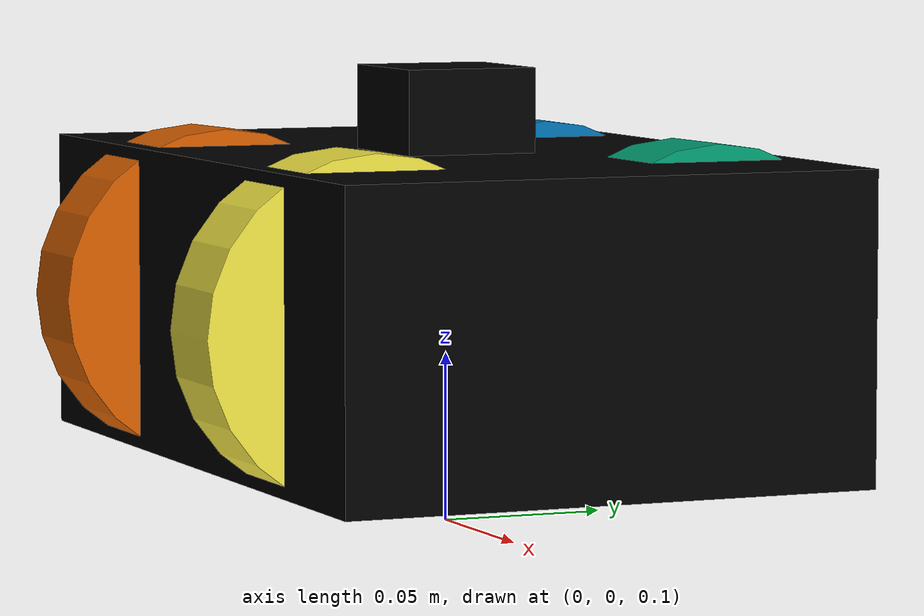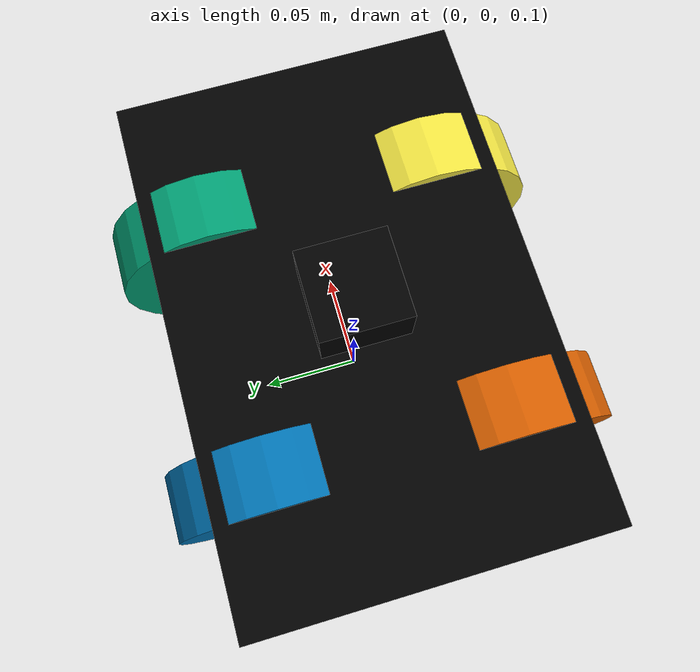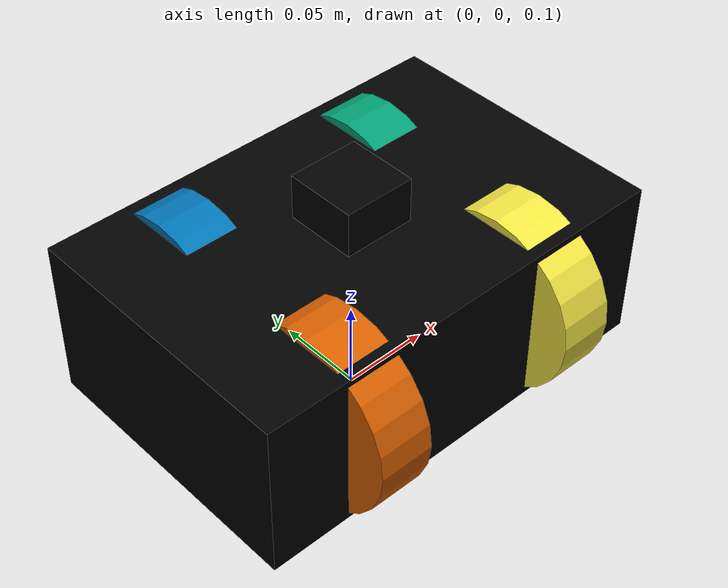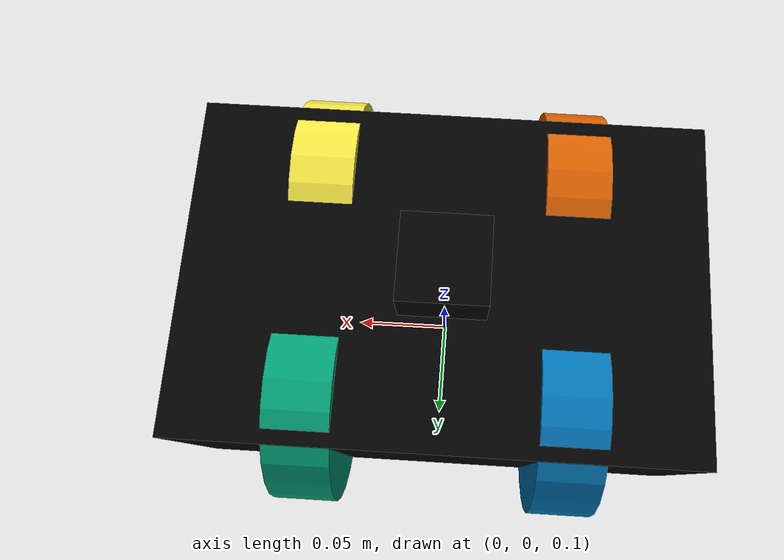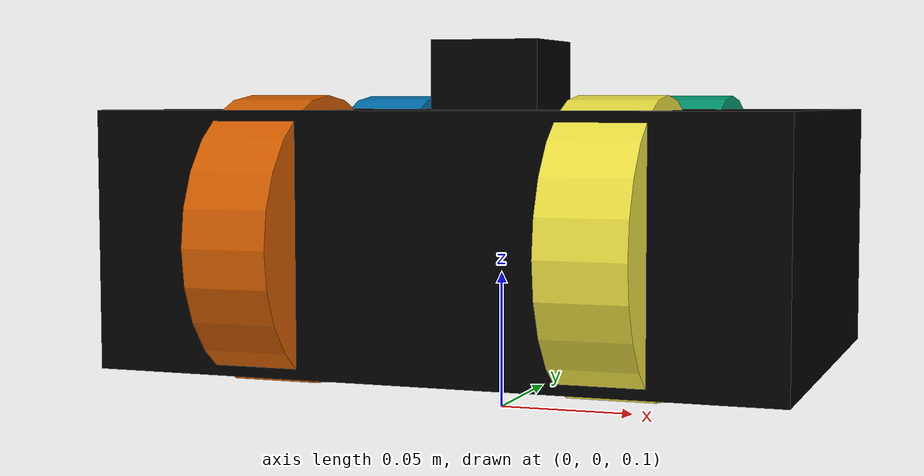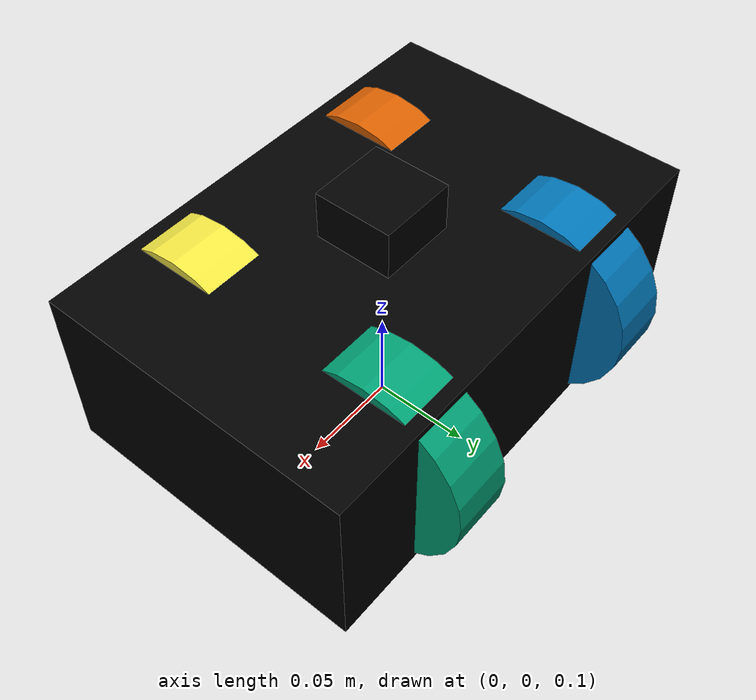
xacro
<?xml version="1.0"?>
<robot name="skatebot" xmlns:xacro="http://www.ros.org/wiki/xacro">

    <xacro:include filename="$(find pipebot_4wd)/description/robot_properties.xacro" />
    <xacro:include filename="$(find pipebot_4wd)/description/wheel.xacro" />
    <xacro:include filename="$(find pipebot_4wd)/description/gazebo_control.xacro" />

    <xacro:arg name="sim_mode" default="false"/>

    <!-- Define the robot base and links to components attached to the base. -->

    <link name="base_footprint">
      <origin xyz="0 0 0" rpy="0 0 0"/>
    </link>

    <link name="base_link">
        <visual>
            <origin xyz="0 0 0" rpy="0 0 0"/>
            <geometry>
                <box size="${chassis_length} ${chassis_width} ${chassis_height}"/>
            </geometry>
            <material name="black"/>
        </visual>
        <collision>
            <origin xyz="0 0 0" rpy="0 0 0"/>
            <geometry>
                <box size="${chassis_length} ${chassis_width} ${chassis_height}"/>
            </geometry>
        </collision>
        <inertial>
      		<origin xyz="0 0 0" rpy="0 0 0"/>
      		<mass value="${chassis_mass}" />
               	<inertia ixx="${chassis_ixx}" ixy="0.0" ixz="0.0"
               		iyy="${chassis_iyy}" iyz="0.0"
               		izz="${chassis_izz}" />
      	</inertial>
    </link>

    <joint name="base_footprint_joint" type="fixed">
        <child link="base_link"/>
        <parent link="base_footprint"/>
        <origin xyz="0 0 0.165" rpy="0 0 0"/>
    </joint>

    <xacro:wheel prefix="front_left" pose_x="${wheel_distance}" pose_y="${chassis_battery/2 + wheel_thickness/2 + 0.005}"/>
    <xacro:wheel prefix="front_right" pose_x="${wheel_distance}" pose_y="${-chassis_battery/2 - wheel_thickness/2 - 0.005}"/>
    <xacro:wheel prefix="back_left" pose_x="${-wheel_distance}" pose_y="${chassis_battery/2 + wheel_thickness/2 + 0.005}"/>
    <xacro:wheel prefix="back_right" pose_x="${-wheel_distance}" pose_y="${-chassis_battery/2 - wheel_thickness/2 - 0.005}"/>

    <link name="imu">
        <visual>
            <origin xyz="0 0 0" rpy="0 0 0"/>
            <geometry>
                <box size="${imu_size_x} ${imu_size_y} ${imu_size_z}"/>
            </geometry>
            <material name="black"/>
        </visual>
        <collision>
            <origin xyz="0 0 0" rpy="0 0 0"/>
            <geometry>
                <box size="${imu_size_x} ${imu_size_y} ${imu_size_z}"/>
            </geometry>
        </collision>
        <inertial>
		<origin xyz="0 0 0" rpy="0 0 0"/>
		<mass value="0.02" />
		<inertia ixx="0.5e-3" ixy="0.0" ixz="0.0"
			iyy="0.5e-3" iyz="0.0"
			izz="0.5e-3" />
	</inertial>
    </link>

     <joint name="base_imu_joint" type="fixed">
        <child link="imu"/>
        <parent link="base_link"/>
        <origin xyz="0 0 ${chassis_height/2.0+ imu_size_z/2}" rpy="0 0 0"/>
    </joint>

    <link name="base_laser">
    </link>
    <joint name="base_laser_joint" type="fixed">
        <child link="base_laser"/>
        <parent link="base_link"/>
        <origin xyz="0 0 ${chassis_height+ imu_size_z}" rpy="0 0 0"/>
    </joint>

    <link name="camera">
    </link>
    <joint name="base_camera_joint" type="fixed">
        <child link="camera"/>
        <parent link="base_link"/>
        <origin xyz="${chassis_length/2.0} 0 0.025" rpy="0 0 0"/>
    </joint>

    <xacro:if value="$(arg sim_mode)">
	<ros2_control name="GazeboSystem" type="system">
            <hardware>
                <plugin>gazebo_ros2_control/GazeboSystem</plugin>
            </hardware>
           <xacro:add_controller joint="joint_front_left"/>
    	   <xacro:add_controller joint="joint_front_right"/>
    	   <xacro:add_controller joint="joint_back_left"/>
    	   <xacro:add_controller joint="joint_back_right"/>
    	</ros2_control>

    	<gazebo>
        	<plugin name="gazebo_ros2_control" filename="libgazebo_ros2_control.so">
            		<parameters>$(find pipebot_4wd)/config/4w_controller_velocity.yaml</parameters>
        	</plugin>
    	</gazebo>

    	<gazebo reference="imu">
    <sensor name="br_imu" type="imu">
        <always_on>true</always_on>
        <update_rate>100</update_rate>
        <imu>
          <angular_velocity>
            <x>
              <noise type="gaussian">
                <mean>0.0</mean>
                <stddev>2e-4</stddev>
              </noise>
            </x>
            <y>
              <noise type="gaussian">
                <mean>0.0</mean>
                <stddev>2e-4</stddev>
              </noise>
            </y>
            <z>
              <noise type="gaussian">
                <mean>0.0</mean>
                <stddev>2e-4</stddev>
              </noise>
            </z>
          </angular_velocity>
          <linear_acceleration>
            <x>
              <noise type="gaussian">
                <mean>0.0</mean>
                <stddev>1.7e-2</stddev>
              </noise>
            </x>
            <y>
              <noise type="gaussian">
                <mean>0.0</mean>
                <stddev>1.7e-2</stddev>
              </noise>
            </y>
            <z>
              <noise type="gaussian">
                <mean>0.0</mean>
                <stddev>1.7e-2</stddev>
              </noise>
            </z>
          </linear_acceleration>
        </imu>
        <plugin name="bytes_imu" filename="libgazebo_ros_imu_sensor.so">
            <ros>
                <namespace>imu</namespace>
                <remapping>~/out:=data</remapping>
            </ros>
            <initial_orientation_as_reference>false</initial_orientation_as_reference>
        </plugin>
    </sensor>
</gazebo>
    </xacro:if>

</robot>

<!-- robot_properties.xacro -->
<robot xmlns:xacro="http://www.ros.org/wiki/xacro">

    <!-- Chassis -->
    <xacro:property name="chassis_length" value="0.24"/>
    <xacro:property name="chassis_width" value="0.160"/>
    <xacro:property name="chassis_battery" value="0.04"/>
    <xacro:property name="chassis_height" value="0.09"/>
    <xacro:property name="chassis_density" value="1000"/>
    <xacro:property name="chassis_mass" value="${chassis_length*chassis_width*chassis_height*chassis_density}"/>
    <xacro:property name="chassis_ixx" value="${chassis_mass*(chassis_width*chassis_width + chassis_height*chassis_height)/12.0}"/>
    <xacro:property name="chassis_iyy" value="${chassis_mass*(chassis_height*chassis_height + chassis_length*chassis_length)/12.0}"/>
    <xacro:property name="chassis_izz" value="${chassis_mass*(chassis_width*chassis_width + chassis_length*chassis_length)/12.0}"/>

    <!-- Wheel -->
    <xacro:property name="wheel_radius" value="0.055"/>
    <xacro:property name="wheel_thickness" value="0.055"/>
    <xacro:property name="wheel_distance" value="0.06"/>
    <xacro:property name="wheel_density" value="1150"/>
    <xacro:property name="wheel_mass" value="${wheel_density*pi*wheel_radius*wheel_radius*wheel_thickness}"/>

    <!-- IMU -->
    <xacro:property name="imu_size_x" value="0.04"/>
    <xacro:property name="imu_size_y" value="0.04"/>
    <xacro:property name="imu_size_z" value="0.025"/>

    <material name="wheel_grey">
        <color rgba="0.4 0.4 0.4 1" />
    </material>

    <!-- Colours -->
    <material name="white">
        <color rgba="1 1 1 1" />
    </material>

    <material name="orange">
        <color rgba="1 0.3 0.1 1"/>
    </material>

    <material name="blue">
        <color rgba="0.2 0.2 1 1"/>
    </material>

    <material name="black">
        <color rgba="0 0 0 1"/>
    </material>

    <material name="red">
        <color rgba="1 0 0 1"/>
    </material>

</robot>

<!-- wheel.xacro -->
<robot xmlns:xacro="http://www.ros.org/wiki/xacro">

  <xacro:macro name="wheel" params="prefix reflect:=1 pose_x:=0 pose_y:=0 pose_z:=0 origin_x:=0 origin_y:=0 origin_z:=0">

    <!-- Basic wheel geometry (tweak to your real wheel) -->
    <xacro:property name="wheel_radius" value="0.05"/>
    <xacro:property name="wheel_width"  value="0.03"/>
    <xacro:property name="wheel_mass"   value="0.25"/>

    <!-- Inertia (rough solid cylinder about its central axis) -->
    <xacro:property name="Ixx" value="${0.5 * wheel_mass * wheel_radius * wheel_radius}"/>
    <xacro:property name="Iyy" value="${(1.0/12.0) * wheel_mass * (3*wheel_radius*wheel_radius + wheel_width*wheel_width)}"/>
    <xacro:property name="Izz" value="${Iyy}"/>

    <link name="${prefix}_wheel">
      <visual>
        <origin xyz="0 0 0" rpy="0 1.57079632679 0"/>
        <geometry>
          <cylinder radius="${wheel_radius}" length="${wheel_width}"/>
        </geometry>
      </visual>

      <collision>
        <origin xyz="0 0 0" rpy="0 1.57079632679 0"/>
        <geometry>
          <cylinder radius="${wheel_radius}" length="${wheel_width}"/>
        </geometry>
      </collision>

      <inertial>
        <origin xyz="0 0 0" rpy="0 0 0"/>
        <mass value="${wheel_mass}"/>
        <inertia ixx="${Ixx}" ixy="0" ixz="0" iyy="${Iyy}" iyz="0" izz="${Izz}"/>
      </inertial>
    </link>

    <!-- Joint from chassis to wheel -->
    <joint name="${prefix}_wheel_joint" type="continuous">
      <!-- Change this if your chassis link has a different name -->
      <parent link="base_link"/>
      <child link="${prefix}_wheel"/>
      <origin xyz="${(pose_x if pose_x != 0 else origin_x)} ${(reflect * (pose_y if pose_y != 0 else origin_y))} ${(pose_z if pose_z != 0 else origin_z)}" rpy="0 0 0"/>
      <!-- Wheel spins about its axle; adjust axis if needed -->
      <axis xyz="0 1 0"/>
      <limit effort="10" velocity="20"/>
    </joint>

  </xacro:macro>
</robot>
        <!--Gazebo can't cope with smaller inertia-> it leads to joints collapsing, see here: https://wiki.ros.org/urdf/Tutorials/Adding%20Physical%20and%20Collision%20Properties%20to%20a%20URDF%20Model -->
